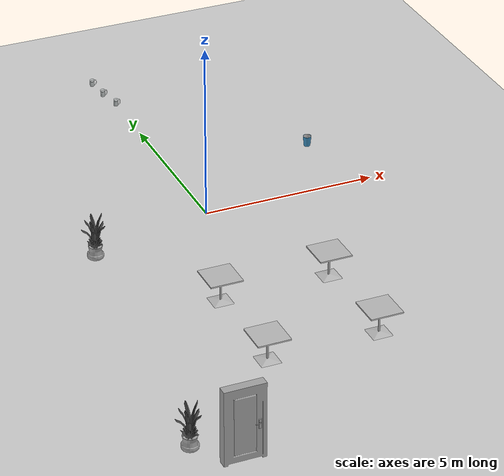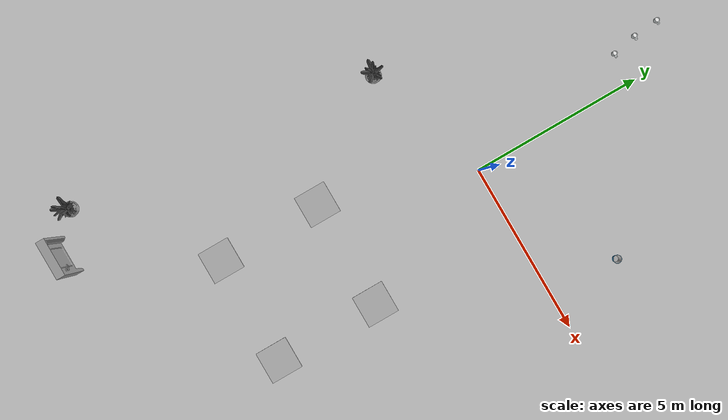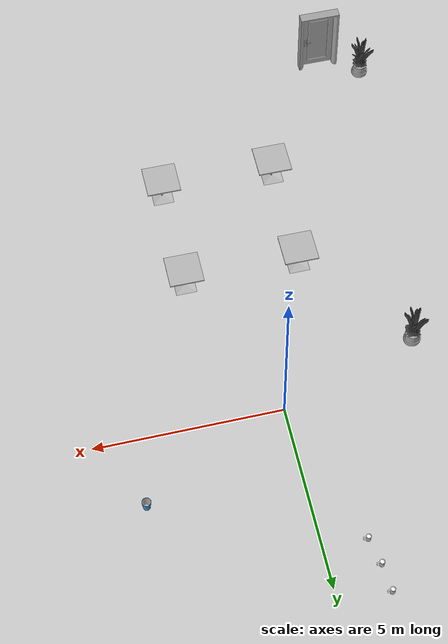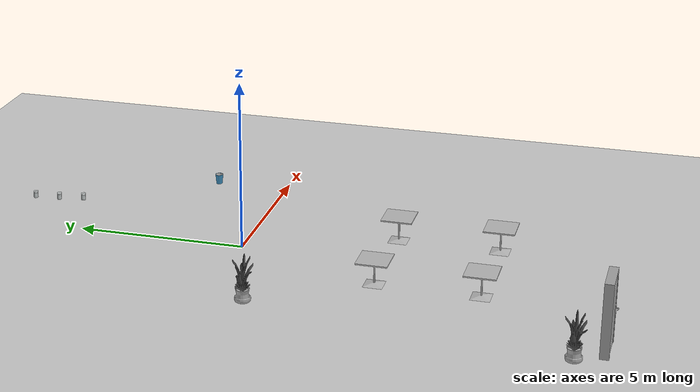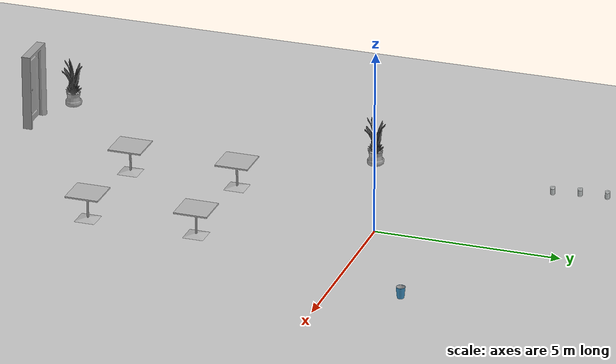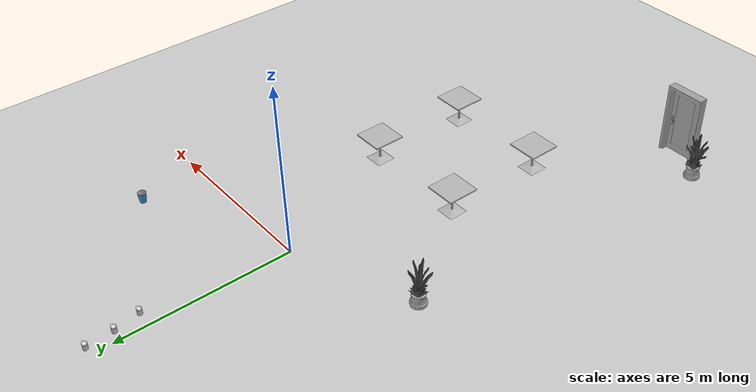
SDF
<sdf version="1.6">
 <world name="default">
  <include><uri>model://ground_plane</uri></include>
  <include><uri>model://sun</uri></include>
  <physics name="default_physics" default="0" type="ode">
   <ode>
    <solver>
     <type>quick</type>
     <iters>70</iters>
     <sor>1.3</sor>
     <use_dynamic_moi_rescaling>0</use_dynamic_moi_rescaling>
    </solver>
    <constraints>
     <cfm>0</cfm>
     <erp>0.2</erp>
     <contact_max_correcting_vel>100</contact_max_correcting_vel>
     <contact_surface_layer>0.01</contact_surface_layer>
    </constraints>
   </ode>
   <real_time_update_rate>100</real_time_update_rate>
   <real_time_factor>1</real_time_factor>
   <max_step_size>0.01</max_step_size>
  </physics>
  <model name="plant">
   <pose>-3.7 -1.2 0.18 0 0 0</pose>
   <static>true</static>
   <link name="link">
    <visual name="visual"><geometry><mesh><uri>model://plant/plant.dae</uri></mesh></geometry></visual>
    <collision name="collision"><geometry><mesh><uri>model://plant/plant.dae</uri></mesh></geometry></collision>
   </link>
  </model>
  <model name="plant_1">
   <pose>-4.7 -10.2 0.18 0 0 0</pose>
   <static>true</static>
   <link name="link">
    <visual name="visual"><geometry><mesh><uri>model://plant/plant.dae</uri></mesh></geometry></visual>
    <collision name="collision"><geometry><mesh><uri>model://plant/plant.dae</uri></mesh></geometry></collision>
   </link>
  </model>
  <model name="door">
   <static>true</static>
   <include><uri>model://door_3d</uri></include>
   <pose>-3.64 -10.91 0 0 -0 0</pose>
   <scale>1 1 1.2</scale>
  </model>
  <model name="cafe_table">
   <static>1</static>
   <link name="link">
    <visual name="visual">
     <geometry><mesh><uri>model://cafe_table/meshes/cafe_table.dae</uri><scale>1 1 1</scale></mesh></geometry>
    </visual>
    <collision name="collision">
     <geometry><mesh><uri>model://cafe_table/meshes/cafe_table.dae</uri><scale>1 1 1</scale></mesh></geometry>
    </collision>
   </link>
   <pose>1.702688 -7.28634 0 0 -0 0</pose>
  </model>
  <model name="cafe_table_0">
   <static>1</static>
   <link name="link">
    <collision name="surface">
     <pose>0 0 0.755 0 -0 0</pose>
     <geometry><box><size>0.913 0.913 0.04</size></box></geometry>
    </collision>
    <collision name="column">
     <pose>0 0 0.37 0 -0 0</pose>
     <geometry><box><size>0.042 0.042 0.74</size></box></geometry>
    </collision>
    <collision name="base">
     <pose>0 0 0.02 0 -0 0</pose>
     <geometry><box><size>0.56 0.56 0.04</size></box></geometry>
    </collision>
    <visual name="visual">
     <geometry><mesh><uri>model://cafe_table/meshes/cafe_table.dae</uri><scale>1 1 1</scale></mesh></geometry>
    </visual>
   </link>
   <pose>-1.402688 -4.28634 0 0 -0 0</pose>
  </model>
  <model name="cafe_table_0_clone">
   <static>1</static>
   <link name="link">
    <collision name="surface">
     <pose>0 0 0.755 0 -0 0</pose>
     <geometry><box><size>0.913 0.913 0.04</size></box></geometry>
    </collision>
    <collision name="column">
     <pose>0 0 0.37 0 -0 0</pose>
     <geometry><box><size>0.042 0.042 0.74</size></box></geometry>
    </collision>
    <collision name="base">
     <pose>0 0 0.02 0 -0 0</pose>
     <geometry><box><size>0.56 0.56 0.04</size></box></geometry>
    </collision>
    <visual name="visual">
     <geometry><mesh><uri>model://cafe_table/meshes/cafe_table.dae</uri><scale>1 1 1</scale></mesh></geometry>
    </visual>
   </link>
   <pose>1.702688 -4.28634 0 0 -0 0</pose>
  </model>
  <model name="cafe_table_0_clone_0">
   <static>1</static>
   <link name="link">
    <collision name="surface">
     <pose>0 0 0.755 0 -0 0</pose>
     <geometry><box><size>0.913 0.913 0.04</size></box></geometry>
    </collision>
    <collision name="column">
     <pose>0 0 0.37 0 -0 0</pose>
     <geometry><box><size>0.042 0.042 0.74</size></box></geometry>
    </collision>
    <collision name="base">
     <pose>0 0 0.02 0 -0 0</pose>
     <geometry><box><size>0.56 0.56 0.04</size></box></geometry>
    </collision>
    <visual name="visual">
     <geometry><mesh><uri>model://cafe_table/meshes/cafe_table.dae</uri><scale>1 1 1</scale></mesh></geometry>
    </visual>
   </link>
   <pose>-1.402688 -7.28634 0 0 -0 0</pose>
  </model>
  <model name="mug">
   <static>true</static>
   <include><uri>model://mug_beer</uri></include>
   <pose>-0.9 4.5 1.35 0 -0 -0</pose>
  </model>
  <model name="mug1">
   <static>true</static>
   <include><uri>model://mug_beer</uri></include>
   <pose>-1.04 5.19 1.35 0 -0 -0</pose>
  </model>
  <model name="mug2">
   <static>true</static>
   <include><uri>model://mug_beer</uri></include>
   <pose>-1.1 5.9 1.35 0 -0 -0</pose>
  </model>
  <model name="trash">
   <static>true</static>
   <include><uri>model://trash_bin</uri></include>
   <pose>3.97 2.0 0.25 0 -0 0</pose>
  </model>
 </world>
</sdf>

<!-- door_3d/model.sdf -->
<sdf version='1.6'>
  <model name='door_3d'>
    <link name='link_1'>
        <visual name='visual'>
        <pose frame=''>0 0 0 0 -0 0</pose>
        <geometry>
          <mesh>
            <uri>model://door_3d/meshes/door_v2_door.dae</uri>
            <scale>1 1 1</scale>
          </mesh>
        </geometry>
       	<material>
          <script>
            <uri>model://door_3d/materials/scripts</uri>
            <uri>model://door_3d/materials/textures</uri>
            <name>door_3d</name>
          </script>
        </material>
        <cast_shadows>1</cast_shadows>
        <transparency>0</transparency>
      </visual>
      <collision name='collision'>
        <laser_retro>0</laser_retro>
        <max_contacts>10</max_contacts>
        <pose frame=''>0 0 0 0 -0 0</pose>
        <geometry>
          <mesh>
            <uri>model://door_3d/meshes/door_v2_door.dae</uri>
            <scale>1 1 1</scale>
          </mesh>
        </geometry>
       </collision>
    </link>
    <link name='link_2'>
         <visual name='visual'>
        <pose frame=''>0 0 0 0 -0 0</pose>
        <geometry>
          <mesh>
            <uri>model://door_3d/meshes/door_v2_handle.dae</uri>
            <scale>1 1 1</scale>
          </mesh>
        </geometry>
           	<material>
          <script>
            <uri>model://door_3d/materials/scripts</uri>
            <uri>model://door_3d/materials/textures</uri>
            <name>door_handle</name>
          </script>
        </material>
        <cast_shadows>1</cast_shadows>
        <transparency>0</transparency>
      </visual>
      <collision name='collision'>
        <laser_retro>0</laser_retro>
        <max_contacts>10</max_contacts>
        <pose frame=''>0 0 0 0 -0 0</pose>
        <geometry>
          <mesh>
            <uri>model://door_3d/meshes/door_v2_handle.dae</uri>
            <scale>1 1 1</scale>
          </mesh>
        </geometry>
        </collision>
    </link>
    <static>1</static>
    <allow_auto_disable>1</allow_auto_disable>
  </model>
</sdf>

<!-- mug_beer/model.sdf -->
<sdf version='1.6'>
  <model name='mug_beer'>
    <link name='link_14'>
      <pose frame=''>0 0 0 0 -0 0</pose>
      <visual name='visual'>
        <pose frame=''>0 0 0 0 -0 0</pose>
        <geometry>
          <mesh>
            <uri>model://mug_beer/meshes/cup2.dae</uri>
            <scale>1 1 1</scale>
          </mesh>
        </geometry>
        <material>
          <lighting>1</lighting>
           <ambient>0.854 0.945 0.945 1</ambient>
          <diffuse>0.854 0.945 0.945 1</diffuse>
          <specular>0.01 0.01 0.01 1</specular>
          <emissive>0 0 0 1</emissive>
          <shader type='vertex'>
            <normal_map>__default__</normal_map>
          </shader>
        </material>
        <cast_shadows>1</cast_shadows>
        <transparency>0.75</transparency>
      </visual>
      <collision name='collision'>
        <laser_retro>0</laser_retro>
        <max_contacts>10</max_contacts>
        <pose frame=''>0 0 0 0 -0 0</pose>
        <geometry>
          <mesh>
            <uri>model://mug_beer/meshes/cup2.dae</uri>
            <scale>1 1 1</scale>
          </mesh>
        </geometry>
        </collision>
    </link>

    <link name='link_15'>
      <pose frame=''>0 0 0.09 0 -0 0</pose>
      <visual name='visual'>
        <pose frame=''>0 0 0 0 -0 0</pose>
        <geometry>
              <cylinder>
            <radius>0.054</radius>
            <length>0.14</length>
          </cylinder>
        </geometry>
	<material>
          <script>
            <uri>model://mug_beer/materials/scripts</uri>
            <uri>model://mug_beer/materials/textures</uri>
            <name>beer</name>
          </script>
        </material>
      </visual>
      <collision name='collision'>
        <laser_retro>0</laser_retro>
        <max_contacts>10</max_contacts>
        <pose frame=''>0 0 0 0 -0 0</pose>
        <geometry>
                 <cylinder>
            <radius>0.054</radius>
            <length>0.14</length>
          </cylinder>
        </geometry>
        </collision>
    </link>

<link name='link_16'>
      <pose frame=''>0 0 0.160 0 -0 0</pose>
      <visual name='visual'>
        <pose frame=''>0 0 0 0 -0 0</pose>
        <geometry>
              <cylinder>
            <radius>0.054</radius>
            <length>0.02</length>
          </cylinder>
        </geometry>
        <material>
          <lighting>1</lighting>
           <ambient>1 1 1 1</ambient>
          <diffuse>1 1 1 1</diffuse>
          <specular>0.01 0.01 0.01 1</specular>
          <emissive>0 0 0 1</emissive>
          <shader type='vertex'>
            <normal_map>__default__</normal_map>
          </shader>
        </material>
      </visual>
      <collision name='collision'>
        <laser_retro>0</laser_retro>
        <max_contacts>10</max_contacts>
        <pose frame=''>0 0 0 0 -0 0</pose>
        <geometry>
                 <cylinder>
            <radius>0.054</radius>
            <length>0.02</length>
          </cylinder>
        </geometry>
        </collision>
    </link>
    <static>1</static>
    <allow_auto_disable>1</allow_auto_disable>
  </model>
</sdf>

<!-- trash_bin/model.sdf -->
<sdf version='1.6'>
  <model name='trash_bin'>
    <link name='link_0'>
      <pose frame=''>0 0 0 0 -0 0</pose>
        <visual name='visual'>
        <pose frame=''>0 0 0 0 -0 0</pose>
        <geometry>
          <mesh>
            <uri>model://trash_bin/meshes/outer.dae</uri>
            <scale>0.6 0.6 0.6</scale>
          </mesh>
        </geometry>
        <material>
          <lighting>1</lighting>
            <ambient>0.235 0.556 0.741 1</ambient>
          <diffuse>0.235 0.556 0.741 1</diffuse>
          <specular>0.01 0.01 0.01 1</specular>
          <emissive>0 0 0 1</emissive>
          <shader type='vertex'>
            <normal_map>__default__</normal_map>
          </shader>
        </material>
        <cast_shadows>1</cast_shadows>
        <transparency>0</transparency>
      </visual>
      <collision name='collision'>
        <laser_retro>0</laser_retro>
        <max_contacts>10</max_contacts>
        <pose frame=''>0 0 0 0 -0 0</pose>
        <geometry>
          <mesh>
            <uri>model://trash_bin/meshes/outer.dae</uri>
            <scale>0.6 0.6 0.6</scale>
          </mesh>
        </geometry>
       </collision>
    </link>
    <link name='link_1'>
      <pose frame=''>0 0 0 0 -0 0</pose>
       <visual name='visual'>
        <pose frame=''>0 0 0 0 -0 0</pose>
        <geometry>
          <mesh>
            <uri>model://trash_bin/meshes/inner.dae</uri>
            <scale>0.6 0.6 0.6</scale>
          </mesh>
        </geometry>
        <material>
          <lighting>1</lighting>
            <ambient>0.9 0.9 0.9 1</ambient>
          <diffuse>0.7 0.7 0.7 1</diffuse>
          <specular>0.01 0.01 0.01 1</specular>
          <emissive>0 0 0 1</emissive>
          <shader type='vertex'>
            <normal_map>__default__</normal_map>
          </shader>
        </material>
        <cast_shadows>1</cast_shadows>
        <transparency>0</transparency>
      </visual>
      <collision name='collision'>
        <laser_retro>0</laser_retro>
        <max_contacts>10</max_contacts>
        <pose frame=''>0 0 0 0 -0 0</pose>
        <geometry>
          <mesh>
            <uri>model://trash_bin/meshes/inner.dae</uri>
            <scale>0.6 0.6 0.6</scale>
          </mesh>
        </geometry>
        </collision>
    </link>
    <static>1</static>
    <allow_auto_disable>1</allow_auto_disable>
  </model>
</sdf>
